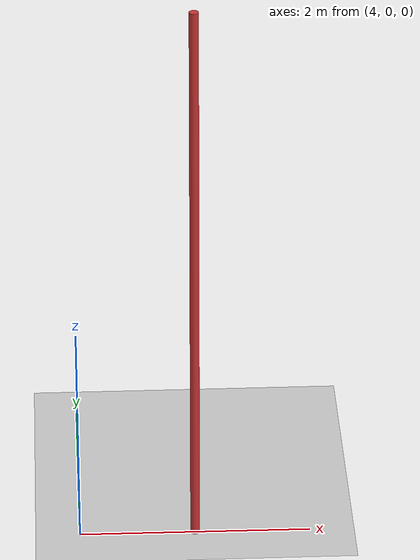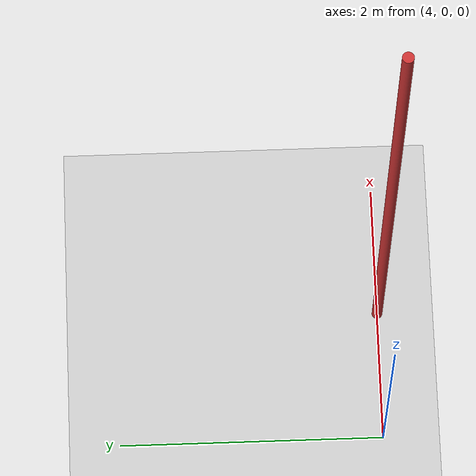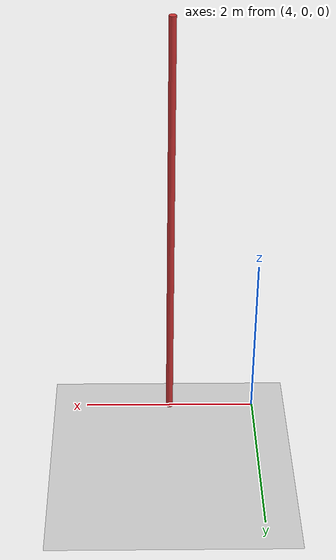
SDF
<?xml version="1.0" ?>
<sdf version="1.5">
  <world name="default">
    <!-- A global light source -->
    <include>
      <uri>model://sun</uri>
    </include>
    <!-- A ground plane -->
    <include>
      <uri>model://ground_plane</uri>
    </include>
    <include>
      <uri>model://asphalt_plane</uri>
    </include>
    <physics name='default_physics' default='0' type='ode'>
      <gravity>0 0 -9.8066</gravity>
      <ode>
        <solver>
          <type>quick</type>
          <iters>10</iters>
          <sor>1.3</sor>
          <use_dynamic_moi_rescaling>0</use_dynamic_moi_rescaling>
        </solver>
        <constraints>
          <cfm>0</cfm>
          <erp>0.2</erp>
          <contact_max_correcting_vel>100</contact_max_correcting_vel>
          <contact_surface_layer>0.001</contact_surface_layer>
        </constraints>
      </ode>
      <max_step_size>0.004</max_step_size>
      <real_time_factor>1</real_time_factor>
      <real_time_update_rate>250</real_time_update_rate>
      <magnetic_field>6.0e-6 2.3e-5 -4.2e-5</magnetic_field>
    </physics>
    <!-- Perching pole at (5, 0) -->
    <include>
      <uri>model://perching_pole</uri>
      <pose>5 0 0 0 0 0</pose>
    </include>
  </world>
</sdf>

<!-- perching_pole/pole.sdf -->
<sdf version="1.6">
  <model name="perching_pole">
    <static>true</static>
    <link name="pole_link">
      <pose>0 0 2.5 0 0 0</pose>
      <inertial>
        <pose>0 0 0 0 0 0</pose>
        <mass>1.0</mass>
        <inertia>
          <ixx>0.001</ixx>
          <ixy>0</ixy>
          <ixz>0</ixz>
          <iyy>0.001</iyy>
          <iyz>0</iyz>
          <izz>0.001</izz>
        </inertia>
      </inertial>
      <collision name="pole_collision">
        <pose>0 0 0 0 0 0</pose>
        <geometry>
          <cylinder>
            <radius>0.04</radius>
            <length>5.0</length>
          </cylinder>
        </geometry>
        <surface>
          <friction>
            <ode>
              <mu>0.9</mu>
              <mu2>0.9</mu2>
            </ode>
          </friction>
          <bounce>
            <restitution_coefficient>0.01</restitution_coefficient>
            <threshold>0.001</threshold>
          </bounce>
          <contact>
            <ode>
              <kp>100000.0</kp>
              <kd>10.0</kd>
              <max_vel>0.01</max_vel>
              <min_depth>0.001</min_depth>
            </ode>
          </contact>
        </surface>
      </collision>
      <visual name="pole_visual">
        <pose>0 0 0 0 0 0</pose>
        <geometry>
          <cylinder>
            <radius>0.04</radius>
            <length>5.0</length>
          </cylinder>
        </geometry>
        <material>
          <ambient>0.8 0.2 0.2 1</ambient>
          <diffuse>0.8 0.2 0.2 1</diffuse>
          <specular>0.1 0.1 0.1 1</specular>
        </material>
      </visual>
    </link>
  </model>
</sdf>
